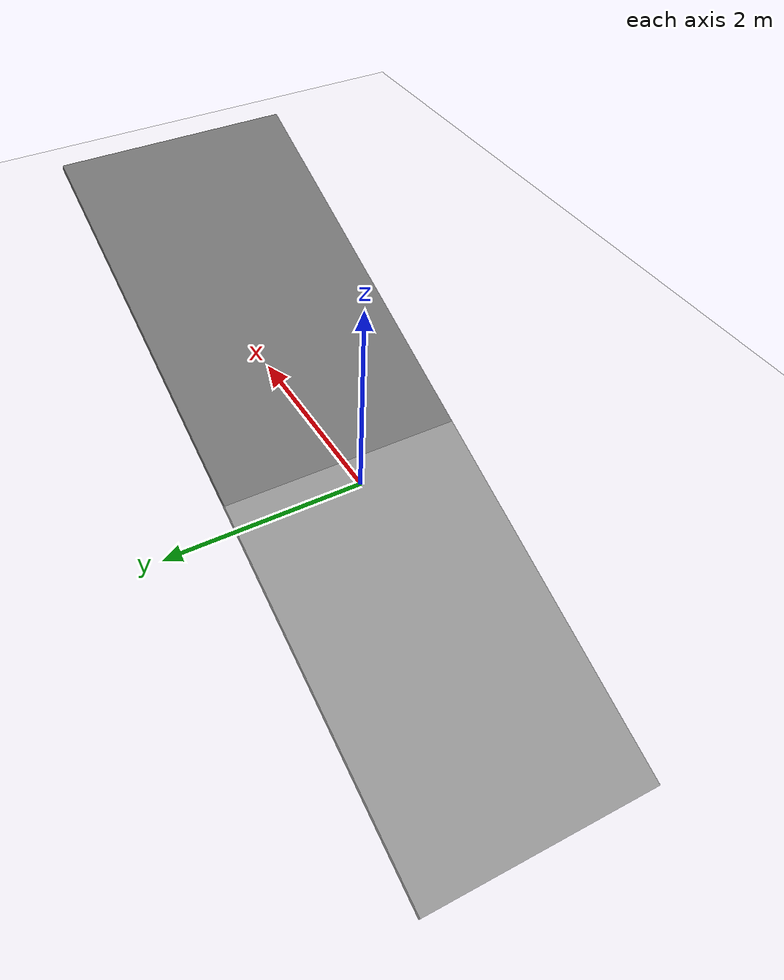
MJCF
<mujoco model="scene">

    <statistic center="0 0 0.1" extent="0.8"/>

    <visual>
        <headlight diffuse="0.6 0.6 0.6" ambient="0.3 0.3 0.3" specular="0 0 0"/>
        <rgba haze="0.99 0.99 0.99 1"/>
        <global azimuth="-130" elevation="-20"/>
    </visual>

    <asset>
        <texture
                type="skybox"
                builtin="gradient"
                rgb1="0.99 0.99 0.99"
                rgb2="0.99 0.99 0.99"
                width="512"
                height="3072"
        />
        <texture
                type="2d"
                name="groundplane"
                builtin="checker"
                mark="edge"
                rgb1="0.93 0.93 0.93"
                rgb2="1.0 1.0 1.0"
                markrgb="1 1 1"
                width="200"
                height="200"
        />
        <material name="groundplane" texture="groundplane" texuniform="true" texrepeat="5 5" reflectance="0.05"/>
    </asset>

    <worldbody>
        <light pos="0 0 1.5" dir="0 0 -1" directional="true"/>
        <geom name="floor" size="0 0 0.05" type="plane" material="groundplane"/>
        <geom pos="0.5 0.0 0.025" type="box" size="4.05 1.25 0.025" quat="1.0 0.0 -0.20 0.0"/>

    </worldbody>
</mujoco>
